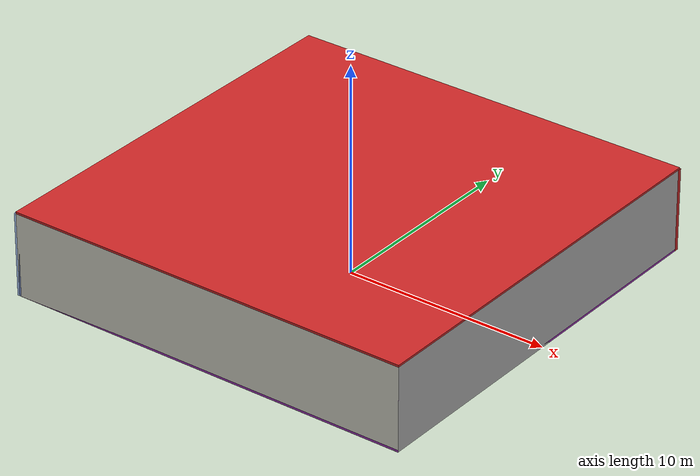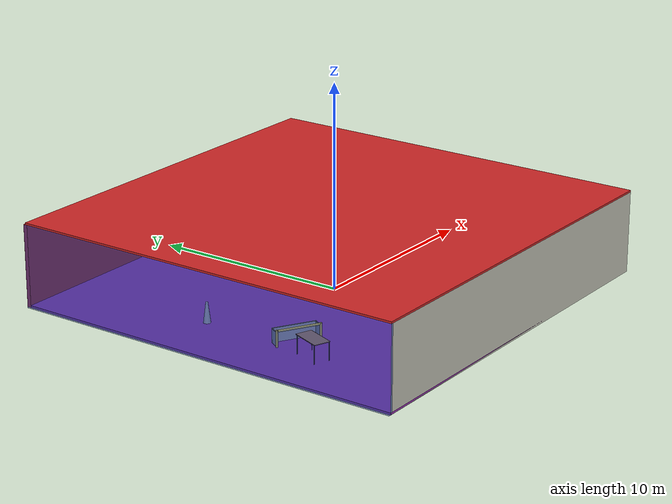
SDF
<sdf version="1.4">
 <world name="default">
  <physics type="ode">
   <max_step_size>0.001</max_step_size>
   <real_time_factor>1</real_time_factor>
   <real_time_update_rate>1000</real_time_update_rate>
   <gravity>0 0 -9.8</gravity>
  </physics>
  <scene><ambient>0.4 0.4 0.4 1</ambient><background>0.7 0.7 0.7 1</background><shadows>1</shadows></scene>
  <model name="Surrounding">
   <static>1</static>
   <link name="Ceiling">
    <collision name="Ceiling_Collision"><geometry><box><size>20 20 0.1</size></box></geometry></collision>
    <visual name="Ceiling_Visual">
     <geometry><box><size>20 20 0.1</size></box></geometry>
     <material>
      <script><uri>file://media/materials/scripts/gazebo.material</uri><name>Gazebo/Red</name></script>
     </material>
    </visual>
    <pose>0 0 4.05 0 0 0</pose>
   </link>
   <link name="Wall_South">
    <collision name="Wall_South_Collision">
     <geometry><box><size>20 0 4</size></box></geometry>
     <pose>0 0 2 0 -0 0</pose>
    </collision>
    <visual name="Wall_South_Visual">
     <pose>0 0 2 0 -0 0</pose>
     <geometry><box><size>20 0 4</size></box></geometry>
     <material>
      <script><uri>file://media/materials/scripts/gazebo.material</uri><name>Gazebo/PaintedWall</name></script>
     </material>
    </visual>
    <velocity_decay><linear>0</linear><angular>0</angular></velocity_decay>
    <pose>0 -10 0 0 -0 0</pose>
   </link>
   <link name="Wall_East">
    <collision name="Wall_21_Collision">
     <geometry><box><size>20 0 4</size></box></geometry>
     <pose>0 0 2 0 -0 0</pose>
    </collision>
    <visual name="Wall_21_Visual">
     <pose>0 0 2 0 -0 0</pose>
     <geometry><box><size>20 0 4</size></box></geometry>
     <material>
      <script><uri>file://media/materials/scripts/gazebo.material</uri><name>Gazebo/LightOn</name></script>
     </material>
    </visual>
    <velocity_decay><linear>0</linear><angular>0</angular></velocity_decay>
    <pose>10 0 0 0 -0 1.5708</pose>
   </link>
   <link name="Wall_North">
    <collision name="Wall_22_Collision">
     <geometry><box><size>20 0.2 4</size></box></geometry>
     <pose>0 0 2 0 -0 0</pose>
    </collision>
    <visual name="Wall_22_Visual">
     <pose>0 0 2 0 -0 0</pose>
     <geometry><box><size>20 0.2 4</size></box></geometry>
     <material>
      <script><uri>file://media/materials/scripts/gazebo.material</uri><name>Gazebo/RedBright</name></script>
     </material>
    </visual>
    <velocity_decay><linear>0</linear><angular>0</angular></velocity_decay>
    <pose>0 10 0 0 -0 0</pose>
   </link>
   <link name="Wall_West">
    <collision name="Wall_23_Collision">
     <geometry><box><size>20 0.2 4</size></box></geometry>
     <pose>0 0 2 0 -0 0</pose>
    </collision>
    <visual name="Wall_23_Visual">
     <pose>0 0 2 0 -0 0</pose>
     <geometry><box><size>20 0.2 4</size></box></geometry>
     <material>
      <script><uri>file://media/materials/scripts/gazebo.material</uri><name>Gazebo/BlueTransparent</name></script>
     </material>
    </visual>
    <velocity_decay><linear>0</linear><angular>0</angular></velocity_decay>
    <pose>-10 0 0 0 0 -1.5708</pose>
   </link>
   <link name="Ground_link">
    <collision name="collision">
     <pose>0 0 .05 0 -0 0</pose>
     <geometry><box><size>20 20 0.1</size></box></geometry>
    </collision>
    <visual name="visual">
     <pose>0 0 .05 0 -0 0</pose>
     <geometry><box><size>20 20 0.1</size></box></geometry>
     <material>
      <script><uri>file://media/materials/scripts/gazebo.material</uri><name>Gazebo/Purple</name></script>
     </material>
    </visual>
   </link>
   <static>1</static>
  </model>
  <spherical_coordinates>
   <surface_model>EARTH_WGS84</surface_model>
   <latitude_deg>0</latitude_deg>
   <longitude_deg>0</longitude_deg>
   <elevation>0</elevation>
   <heading_deg>0</heading_deg>
  </spherical_coordinates>
  <light name="lightball_0" type="diffuse">
   <diffuse>0.8 0.8 0.8 1</diffuse>
   <specular>0.2 0.2 0.2 1</specular>
   <attenuation>
    <range>100</range>
    <constant>0.7</constant>
    <linear>0.01</linear>
    <quadratic>0.001</quadratic>
   </attenuation>
   <direction>-0.5 0.1 -0.9</direction>
   <pose>-3.77802656175 7.86236690533 3.77557863745 0 0 0</pose>
  </light>
  <light name="lightball_1" type="diffuse">
   <diffuse>0.8 0.8 0.8 1</diffuse>
   <specular>0.2 0.2 0.2 1</specular>
   <attenuation>
    <range>100</range>
    <constant>0.7</constant>
    <linear>0.01</linear>
    <quadratic>0.001</quadratic>
   </attenuation>
   <direction>-0.5 0.1 -0.9</direction>
   <pose>-2.3558867973 7.55772273782 1.1052231171 0 0 0</pose>
  </light>
  <light name="lightball_2" type="diffuse">
   <diffuse>0.8 0.8 0.8 1</diffuse>
   <specular>0.2 0.2 0.2 1</specular>
   <attenuation>
    <range>100</range>
    <constant>0.7</constant>
    <linear>0.01</linear>
    <quadratic>0.001</quadratic>
   </attenuation>
   <direction>-0.5 0.1 -0.9</direction>
   <pose>9.944965331 9.25585650066 3.43643963061 0 0 0</pose>
  </light>
  <light name="lightball_3" type="diffuse">
   <diffuse>0.8 0.8 0.8 1</diffuse>
   <specular>0.2 0.2 0.2 1</specular>
   <attenuation>
    <range>100</range>
    <constant>0.7</constant>
    <linear>0.01</linear>
    <quadratic>0.001</quadratic>
   </attenuation>
   <direction>-0.5 0.1 -0.9</direction>
   <pose>-9.42459688918 -8.26801326973 1.29275409564 0 0 0</pose>
  </light>
  <light name="lightball_4" type="diffuse">
   <diffuse>0.8 0.8 0.8 1</diffuse>
   <specular>0.2 0.2 0.2 1</specular>
   <attenuation>
    <range>100</range>
    <constant>0.7</constant>
    <linear>0.01</linear>
    <quadratic>0.001</quadratic>
   </attenuation>
   <direction>-0.5 0.1 -0.9</direction>
   <pose>7.41480941285 4.78082795036 1.77846662211 0 0 0</pose>
  </light>
  <light name="lightball_5" type="diffuse">
   <diffuse>0.8 0.8 0.8 1</diffuse>
   <specular>0.2 0.2 0.2 1</specular>
   <attenuation>
    <range>100</range>
    <constant>0.7</constant>
    <linear>0.01</linear>
    <quadratic>0.001</quadratic>
   </attenuation>
   <direction>-0.5 0.1 -0.9</direction>
   <pose>3.39745876364 -1.93094296957 1.81607753091 0 0 0</pose>
  </light>
  <light name="lightball_6" type="diffuse">
   <diffuse>0.8 0.8 0.8 1</diffuse>
   <specular>0.2 0.2 0.2 1</specular>
   <attenuation>
    <range>100</range>
    <constant>0.7</constant>
    <linear>0.01</linear>
    <quadratic>0.001</quadratic>
   </attenuation>
   <direction>-0.5 0.1 -0.9</direction>
   <pose>-6.47762135081 -2.85613770857 2.35501497415 0 0 0</pose>
  </light>
  <light name="lightball_7" type="diffuse">
   <diffuse>0.8 0.8 0.8 1</diffuse>
   <specular>0.2 0.2 0.2 1</specular>
   <attenuation>
    <range>100</range>
    <constant>0.7</constant>
    <linear>0.01</linear>
    <quadratic>0.001</quadratic>
   </attenuation>
   <direction>-0.5 0.1 -0.9</direction>
   <pose>6.58267049365 2.43036875316 2.15889101343 0 0 0</pose>
  </light>
  <light name="lightball_8" type="diffuse">
   <diffuse>0.8 0.8 0.8 1</diffuse>
   <specular>0.2 0.2 0.2 1</specular>
   <attenuation>
    <range>100</range>
    <constant>0.7</constant>
    <linear>0.01</linear>
    <quadratic>0.001</quadratic>
   </attenuation>
   <direction>-0.5 0.1 -0.9</direction>
   <pose>-4.96029744777 0.0397406032625 2.25227861836 0 0 0</pose>
  </light>
  <light name="lightball_9" type="diffuse">
   <diffuse>0.8 0.8 0.8 1</diffuse>
   <specular>0.2 0.2 0.2 1</specular>
   <attenuation>
    <range>100</range>
    <constant>0.7</constant>
    <linear>0.01</linear>
    <quadratic>0.001</quadratic>
   </attenuation>
   <direction>-0.5 0.1 -0.9</direction>
   <pose>-7.10642463454 1.99564750639 2.78760177793 0 0 0</pose>
  </light>
  <include><uri>model://table</uri><pose>-7.2558781877 -4.07750261252 0 0 0 1.20248507108</pose></include>
  <include>
   <uri>model://robocup_3Dsim_goal</uri>
   <pose>-6.38239634338 -2.68207701593 0 0 0 1.0462753014</pose>
  </include>
  <include>
   <uri>model://construction_cone</uri>
   <pose>-6.86500761142 2.08682972049 0 0 0 0.955223365098</pose>
  </include>
  <include><uri>model://cabinet</uri><pose>3.84939489077 1.31848415568 0 0 0 2.7928966656</pose></include>
 </world>
</sdf>

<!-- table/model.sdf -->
<sdf version="1.5">
  <model name="table">
    <static>true</static>
    <link name="link">
      <collision name="surface">
        <pose>0 0 1.0 0 0 0</pose>
        <geometry>
          <box>
            <size>1.5 0.8 0.03</size>
          </box>
        </geometry>
        <surface>
          <friction>
            <ode>
              <mu>0.6</mu>
              <mu2>0.6</mu2>
            </ode>
          </friction>
        </surface>
      </collision>
      <visual name="visual1">
        <pose>0 0 1.0 0 0 0</pose>
        <geometry>
          <box>
            <size>1.5 0.8 0.03</size>
          </box>
        </geometry>
        <material>
          <script>
            <uri>model://media/materials/scripts/gazebo.material</uri>
            <name>Gazebo/Wood</name>
          </script>
        </material>
      </visual>
      <collision name="front_left_leg">
        <pose>0.68 0.38 0.5 0 0 0</pose>
        <geometry>
          <cylinder>
            <radius>0.02</radius>
            <length>1.0</length>
          </cylinder>
        </geometry>
      </collision>
      <visual name="front_left_leg">
        <pose>0.68 0.38 0.5 0 0 0</pose>
        <geometry>
          <cylinder>
            <radius>0.02</radius>
            <length>1.0</length>
          </cylinder>
        </geometry>
        <material>
          <script>
            <uri>model://media/materials/scripts/gazebo.material</uri>
            <name>Gazebo/Grey</name>
          </script>
        </material>
      </visual>
      <collision name="front_right_leg">
        <pose>0.68 -0.38 0.5 0 0 0</pose>
        <geometry>
          <cylinder>
            <radius>0.02</radius>
            <length>1.0</length>
          </cylinder>
        </geometry>
      </collision>
      <visual name="front_right_leg">
        <pose>0.68 -0.38 0.5 0 0 0</pose>
        <geometry>
          <cylinder>
            <radius>0.02</radius>
            <length>1.0</length>
          </cylinder>
        </geometry>
        <material>
          <script>
            <uri>model://media/materials/scripts/gazebo.material</uri>
            <name>Gazebo/Grey</name>
          </script>
        </material>
      </visual>
      <collision name="back_right_leg">
        <pose>-0.68 -0.38 0.5 0 0 0</pose>
        <geometry>
          <cylinder>
            <radius>0.02</radius>
            <length>1.0</length>
          </cylinder>
        </geometry>
      </collision>
      <visual name="back_right_leg">
        <pose>-0.68 -0.38 0.5 0 0 0</pose>
        <geometry>
          <cylinder>
            <radius>0.02</radius>
            <length>1.0</length>
          </cylinder>
        </geometry>
        <material>
          <script>
            <uri>model://media/materials/scripts/gazebo.material</uri>
            <name>Gazebo/Grey</name>
          </script>
        </material>
      </visual>
      <collision name="back_left_leg">
        <pose>-0.68 0.38 0.5 0 0 0</pose>
        <geometry>
          <cylinder>
            <radius>0.02</radius>
            <length>1.0</length>
          </cylinder>
        </geometry>
      </collision>
      <visual name="back_left_leg">
        <pose>-0.68 0.38 0.5 0 0 0</pose>
        <geometry>
          <cylinder>
            <radius>0.02</radius>
            <length>1.0</length>
          </cylinder>
        </geometry>
        <material>
          <script>
            <uri>model://media/materials/scripts/gazebo.material</uri>
            <name>Gazebo/Grey</name>
          </script>
        </material>
      </visual>
    </link>
  </model>
</sdf>

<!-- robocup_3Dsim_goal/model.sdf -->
<sdf version="1.5">
  <model name="robocup_3d_goal">
    <static>true</static>
    <link name="left_post">
      <pose>0 1.05 0.45 0 0 0</pose>
      <collision name="collision">
        <geometry>
          <cylinder>
            <radius>0.05</radius>
            <length>0.9</length>
          </cylinder>
        </geometry>
      </collision>
      <visual name="visual">
        <geometry>
          <cylinder>
            <radius>0.05</radius>
            <length>0.9</length>
          </cylinder>
        </geometry>
        <material>
          <script>
            <uri>file://media/materials/scripts/gazebo.material</uri>
            <name>Gazebo/ZincYellow</name>
          </script>
        </material>
      </visual>
    </link>
    <link name="left_support_horiz_lower">
      <pose>0.30 1.05 0.01 0 0 0</pose>
      <collision name="collision">
        <geometry>
          <box>
            <size>0.50 0.02 0.02</size>
          </box>
        </geometry>
      </collision>
      <visual name="visual">
        <geometry>
          <box>
            <size>0.50 0.02 0.02</size>
          </box>
        </geometry>
        <material>
          <script>
            <uri>file://media/materials/scripts/gazebo.material</uri>
            <name>Gazebo/White</name>
          </script>
        </material>
      </visual>
    </link>
    <link name="left_support_horiz_upper">
      <pose>0.30 1.05 0.79 0 0 0</pose>
      <collision name="collision">
        <geometry>
          <box>
            <size>0.50 0.02 0.02</size>
          </box>
        </geometry>
      </collision>
      <visual name="visual">
        <geometry>
          <box>
            <size>0.50 0.02 0.02</size>
          </box>
        </geometry>
        <material>
          <script>
            <uri>file://media/materials/scripts/gazebo.material</uri>
            <name>Gazebo/White</name>
          </script>
        </material>
      </visual>
    </link>
    <link name="left_support_vertical">
      <pose>0.56 1.05 0.4 0 1.5708 0</pose>
      <collision name="collision">
        <geometry>
          <box>
            <size>0.80 0.02 0.02</size>
          </box>
        </geometry>
      </collision>
      <visual name="visual">
        <geometry>
          <box>
            <size>0.80 0.02 0.02</size>
          </box>
        </geometry>
        <material>
          <script>
            <uri>file://media/materials/scripts/gazebo.material</uri>
            <name>Gazebo/White</name>
          </script>
        </material>
      </visual>
    </link>
    <link name="right_support_horiz_lower">
      <pose>0.30 -1.05 0.01 0 0 0</pose>
      <collision name="collision">
        <geometry>
          <box>
            <size>0.50 0.02 0.02</size>
          </box>
        </geometry>
      </collision>
      <visual name="visual">
        <geometry>
          <box>
            <size>0.50 0.02 0.02</size>
          </box>
        </geometry>
        <material>
          <script>
            <uri>file://media/materials/scripts/gazebo.material</uri>
            <name>Gazebo/White</name>
          </script>
        </material>
      </visual>
    </link>
    <link name="right_support_horiz_upper">
      <pose>0.30 -1.05 0.79 0 0 0</pose>
      <collision name="collision">
        <geometry>
          <box>
            <size>0.50 0.02 0.02</size>
          </box>
        </geometry>
      </collision>
      <visual name="visual">
        <geometry>
          <box>
            <size>0.50 0.02 0.02</size>
          </box>
        </geometry>
        <material>
          <script>
            <uri>file://media/materials/scripts/gazebo.material</uri>
            <name>Gazebo/White</name>
          </script>
        </material>
      </visual>
    </link>
    <link name="right_support_vertical">
      <pose>0.56 -1.05 0.4 0 1.5708 0</pose>
      <collision name="collision">
        <geometry>
          <box>
            <size>0.80 0.02 0.02</size>
          </box>
        </geometry>
      </collision>
      <visual name="visual">
        <geometry>
          <box>
            <size>0.80 0.02 0.02</size>
          </box>
        </geometry>
        <material>
          <script>
            <uri>file://media/materials/scripts/gazebo.material</uri>
            <name>Gazebo/White</name>
          </script>
        </material>
      </visual>
    </link>
    <link name="center_support_horiz_lower">
      <pose>0.56 0 0.01 0 1.5708 0</pose>
      <collision name="collision">
        <geometry>
          <box>
            <size>0.02 2.08 0.02</size>
          </box>
        </geometry>
      </collision>
      <visual name="visual">
        <geometry>
          <box>
            <size>0.02 2.08 0.02</size>
          </box>
        </geometry>
        <material>
          <script>
            <uri>file://media/materials/scripts/gazebo.material</uri>
            <name>Gazebo/White</name>
          </script>
        </material>
      </visual>
    </link>
    <link name="center_support_horiz_upper">
      <pose>0.56 0 0.79 0 1.5708 0</pose>
      <collision name="collision">
        <geometry>
          <box>
            <size>0.02 2.08 0.02</size>
          </box>
        </geometry>
      </collision>
      <visual name="visual">
        <geometry>
          <box>
            <size>0.02 2.08 0.02</size>
          </box>
        </geometry>
        <material>
          <script>
            <uri>file://media/materials/scripts/gazebo.material</uri>
            <name>Gazebo/White</name>
          </script>
        </material>
      </visual>
    </link>
    <link name="right_post">
      <pose>0 -1.05 0.45 0 0 0</pose>
      <collision name="collision">
        <geometry>
          <cylinder>
            <radius>0.05</radius>
            <length>0.9</length>
          </cylinder>
        </geometry>
      </collision>
      <visual name="visual">
        <geometry>
          <cylinder>
            <radius>0.05</radius>
            <length>0.9</length>
          </cylinder>
        </geometry>
        <material>
          <script>
            <uri>file://media/materials/scripts/gazebo.material</uri>
            <name>Gazebo/ZincYellow</name>
          </script>
        </material>
      </visual>
    </link>
    <link name="crossbar">
      <pose>0 0 0.85 1.57 1.57 0</pose>
      <collision name="collision">
        <geometry>
          <cylinder>
            <radius>0.05</radius>
            <length>2.0</length>
          </cylinder>
        </geometry>
      </collision>
      <visual name="visual">
        <geometry>
          <cylinder>
            <radius>0.05</radius>
            <length>2.0</length>
          </cylinder>
        </geometry>
        <material>
          <script>
            <uri>file://media/materials/scripts/gazebo.material</uri>
            <name>Gazebo/ZincYellow</name>
          </script>
        </material>
      </visual>
    </link>
    <link name="center_net">
      <pose>0.56 0 0.40 0 0 0</pose>
      <collision name="collision">
        <geometry>
          <box>
            <size>0.01 2.1 0.80</size>
          </box>
        </geometry>
      </collision>
      <visual name="visual">
        <geometry>
          <box>
            <size>0.01 2.1 0.80</size>
          </box>
        </geometry>
        <material>
          <script>
            <uri>model://../model_source/models/robocup09_spl_field/materials/scripts/</uri>
            <uri>model://../model_source/models/robocup09_spl_field/materials/textures/</uri>
            <name>RoboCup/Net</name>
          </script>
        </material>
      </visual>
    </link>
    <link name="left_net">
      <pose>0.30 1.05 0.40 0 0 0</pose>
      <collision name="collision">
        <geometry>
          <box>
            <size>0.50 0.01 0.76</size>
          </box>
        </geometry>
      </collision>
      <visual name="visual">
        <geometry>
          <box>
            <size>0.50 0.01 0.76</size>
          </box>
        </geometry>
        <material>
          <script>
            <uri>model://../model_source/models/robocup09_spl_field/materials/scripts/</uri>
            <uri>model://../model_source/models/robocup09_spl_field/materials/textures/</uri>
            <name>RoboCup/Net</name>
          </script>
        </material>
      </visual>
    </link>
    <link name="right_net">
      <pose>0.30 -1.05 0.40 0 0 0</pose>
      <collision name="collision">
        <geometry>
          <box>
            <size>0.50 0.01 0.76</size>
          </box>
        </geometry>
      </collision>
      <visual name="visual">
        <geometry>
          <box>
            <size>0.50 0.01 0.76</size>
          </box>
        </geometry>
        <material>
          <script>
            <uri>model://../model_source/models/robocup09_spl_field/materials/scripts/</uri>
            <uri>model://../model_source/models/robocup09_spl_field/materials/textures/</uri>
            <name>RoboCup/Net</name>
          </script>
        </material>
      </visual>
    </link>
  </model>
</sdf>

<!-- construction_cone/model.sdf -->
<sdf version="1.5">
  <model name="Construction Cone">
    <link name="link">
      <collision name="collision">
        <geometry>
          <mesh>
            <scale>10 10 10</scale>
            <uri>file://isr-testbed/construction_cone/meshes/construction_cone.dae</uri>
          </mesh>
        </geometry>
      </collision>
      <visual name="visual">
        <geometry>
          <mesh>
            <scale>10 10 10</scale>
            <uri>file://isr-testbed/construction_cone/meshes/construction_cone.dae</uri>
          </mesh>
        </geometry>
      </visual>
    </link>
  </model>
</sdf>

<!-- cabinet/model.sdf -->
<sdf version="1.5">
  <model name="cabinet">
    <static>true</static>
    <link name="cabinet_bottom_plate">
      <inertial>
        <pose>0 0 -1 0 0 0</pose>
        <inertia>
          <ixx>2.050000</ixx>
          <ixy>0</ixy>
          <ixz>0</ixz>
          <iyy>2.050000</iyy>
          <iyz>0</iyz>
          <izz>2.050000</izz>
        </inertia>
        <mass>25.000000</mass>
      </inertial>
      <collision name="cabinet_bottom_plate_geom">
        <pose>0 0 0.010000 0 0 0</pose>
        <geometry>
          <box>
            <size>0.450000 0.450000 0.020000</size>
          </box>
        </geometry>
      </collision>
      <visual name="cabinet_bottom_plate_geom_visual">
        <pose>0 0 0.010000 0 0 0</pose>
        <geometry>
          <box>
            <size>0.450000 0.450000 0.020000</size>
          </box>
        </geometry>
        <material>
          <script>
            <uri>model://media/materials/scripts/gazebo.material</uri>
            <name>Gazebo/Wood</name>
          </script>
        </material>
      </visual>
      <collision name="cabinet_bottom_plate_geom_cabinet_back_plate">
        <pose>0.235000 0 0.510000 0 0 0</pose>
        <geometry>
          <box>
            <size>0.020000 0.450000 1.020000</size>
          </box>
        </geometry>
      </collision>
      <visual name="cabinet_bottom_plate_geom_cabinet_back_plate_visual">
        <pose>0.235000 0 0.510000 0 0 0</pose>
        <geometry>
          <box>
            <size>0.020000 0.450000 1.020000</size>
          </box>
        </geometry>
        <material>
          <script>
            <uri>model://media/materials/scripts/gazebo.material</uri>
            <name>Gazebo/Wood</name>
          </script>
        </material>
      </visual>
      <collision name="cabinet_bottom_plate_geom_cabinet_left_plate">
        <pose>0 0.235000 0.510000 0 0 0</pose>
        <geometry>
          <box>
            <size>0.450000 0.020000 1.020000</size>
          </box>
        </geometry>
      </collision>
      <visual name="cabinet_bottom_plate_geom_cabinet_left_plate_visual">
        <pose>0 0.235000 0.510000 0 0 0</pose>
        <geometry>
          <box>
            <size>0.450000 0.020000 1.020000</size>
          </box>
        </geometry>
        <material>
          <script>
            <uri>model://media/materials/scripts/gazebo.material</uri>
            <name>Gazebo/Wood</name>
          </script>
        </material>
      </visual>
      <collision name="cabinet_bottom_plate_geom_cabinet_middle_plate">
        <pose>0 0 0.510000 0 0 0</pose>
        <geometry>
          <box>
            <size>0.450000 0.450000 0.020000</size>
          </box>
        </geometry>
      </collision>
      <visual name="cabinet_bottom_plate_geom_cabinet_middle_plate_visual">
        <pose>0 0 0.510000 0 0 0</pose>
        <geometry>
          <box>
            <size>0.450000 0.450000 0.020000</size>
          </box>
        </geometry>
        <material>
          <script>
            <uri>model://media/materials/scripts/gazebo.material</uri>
            <name>Gazebo/Wood</name>
          </script>
        </material>
      </visual>
      <collision name="cabinet_bottom_plate_geom_cabinet_right_plate">
        <pose>0 -0.235000 0.510000 0 0 0</pose>
        <geometry>
          <box>
            <size>0.450000 0.020000 1.020000</size>
          </box>
        </geometry>
      </collision>
      <visual name="cabinet_bottom_plate_geom_cabinet_right_plate_visual">
        <pose>0 -0.235000 0.510000 0 0 0</pose>
        <geometry>
          <box>
            <size>0.450000 0.020000 1.020000</size>
          </box>
        </geometry>
        <material>
          <script>
            <uri>model://media/materials/scripts/gazebo.material</uri>
            <name>Gazebo/Wood</name>
          </script>
        </material>
      </visual>
      <collision name="cabinet_bottom_plate_geom_cabinet_top_plate">
        <pose>0 0 1.010000 0 0 0</pose>
        <geometry>
          <box>
            <size>0.450000 0.450000 0.020000</size>
          </box>
        </geometry>
      </collision>
      <visual name="cabinet_bottom_plate_geom_cabinet_top_plate_visual">
        <pose>0 0 1.010000 0 0 0</pose>
        <geometry>
          <box>
            <size>0.450000 0.450000 0.020000</size>
          </box>
        </geometry>
        <material>
          <script>
            <uri>model://media/materials/scripts/gazebo.material</uri>
            <name>Gazebo/Wood</name>
          </script>
        </material>
      </visual>
    </link>
  </model>
</sdf>
